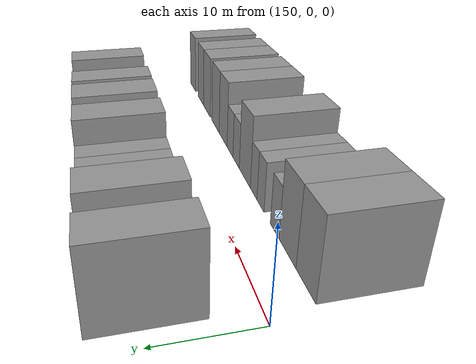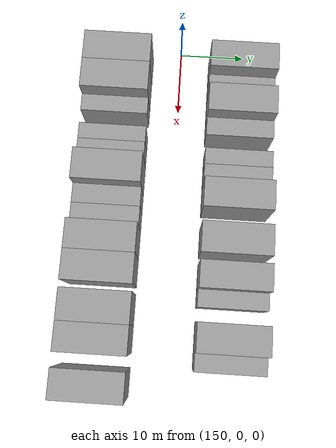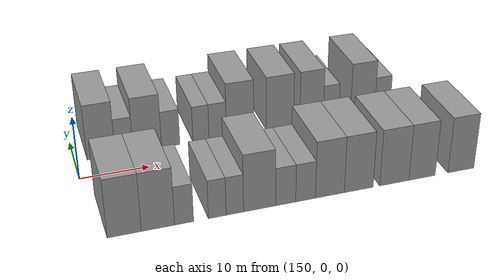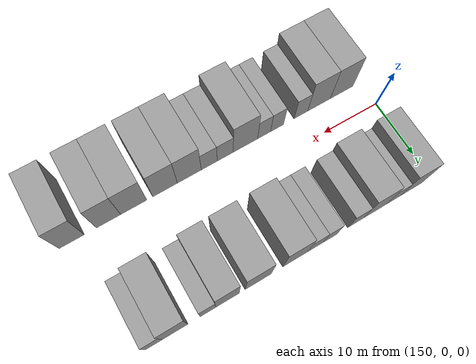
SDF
<sdf version="1.6">
 <world name="default">
  <model name="building_37">
   <static>1</static>
   <pose>153.8271 9.5000 0 0.000000 0.000000 1.570796</pose>
   <link name="link">
    <pose>0 0 4.50 0 0 0</pose>
    <collision name="collision"><geometry><box><size>10.0000 4.0813 9.0000</size></box></geometry></collision>
    <visual name="visual">
     <cast_shadows>0</cast_shadows>
     <geometry><box><size>10.0000 4.0813 9.0000</size></box></geometry>
     <material>
      <script>
       <uri>model://grey_wall/materials/scripts</uri>
       <uri>model://grey_wall/materials/textures</uri>
       <name>vrc/grey_wall</name>
      </script>
     </material>
    </visual>
   </link>
  </model>
  <model name="building_38">
   <static>1</static>
   <pose>157.1939 9.5000 0 0.000000 0.000000 1.570796</pose>
   <link name="link">
    <pose>0 0 3.00 0 0 0</pose>
    <collision name="collision"><geometry><box><size>10.0000 2.6525 6.0000</size></box></geometry></collision>
    <visual name="visual">
     <cast_shadows>0</cast_shadows>
     <geometry><box><size>10.0000 2.6525 6.0000</size></box></geometry>
     <material>
      <script>
       <uri>model://grey_wall/materials/scripts</uri>
       <uri>model://grey_wall/materials/textures</uri>
       <name>vrc/grey_wall</name>
      </script>
     </material>
    </visual>
   </link>
  </model>
  <model name="building_39">
   <static>1</static>
   <pose>160.6369 9.5000 0 0.000000 0.000000 1.570796</pose>
   <link name="link">
    <pose>0 0 4.50 0 0 0</pose>
    <collision name="collision"><geometry><box><size>10.0000 4.2335 9.0000</size></box></geometry></collision>
    <visual name="visual">
     <cast_shadows>0</cast_shadows>
     <geometry><box><size>10.0000 4.2335 9.0000</size></box></geometry>
     <material>
      <script>
       <uri>model://grey_wall/materials/scripts</uri>
       <uri>model://grey_wall/materials/textures</uri>
       <name>vrc/grey_wall</name>
      </script>
     </material>
    </visual>
   </link>
  </model>
  <model name="building_40">
   <static>1</static>
   <pose>164.1347 9.5000 0 0.000000 0.000000 1.570796</pose>
   <link name="link">
    <pose>0 0 3.00 0 0 0</pose>
    <collision name="collision"><geometry><box><size>10.0000 2.7620 6.0000</size></box></geometry></collision>
    <visual name="visual">
     <cast_shadows>0</cast_shadows>
     <geometry><box><size>10.0000 2.7620 6.0000</size></box></geometry>
     <material>
      <script>
       <uri>model://grey_wall/materials/scripts</uri>
       <uri>model://grey_wall/materials/textures</uri>
       <name>vrc/grey_wall</name>
      </script>
     </material>
    </visual>
   </link>
  </model>
  <model name="building_41">
   <static>1</static>
   <pose>168.7528 9.5000 0 0.000000 0.000000 1.570796</pose>
   <link name="link">
    <pose>0 0 3.00 0 0 0</pose>
    <collision name="collision"><geometry><box><size>10.0000 2.4742 6.0000</size></box></geometry></collision>
    <visual name="visual">
     <cast_shadows>0</cast_shadows>
     <geometry><box><size>10.0000 2.4742 6.0000</size></box></geometry>
     <material>
      <script>
       <uri>model://grey_wall/materials/scripts</uri>
       <uri>model://grey_wall/materials/textures</uri>
       <name>vrc/grey_wall</name>
      </script>
     </material>
    </visual>
   </link>
  </model>
  <model name="building_42">
   <static>1</static>
   <pose>171.3411 9.5000 0 0.000000 0.000000 1.570796</pose>
   <link name="link">
    <pose>0 0 3.00 0 0 0</pose>
    <collision name="collision"><geometry><box><size>10.0000 2.7023 6.0000</size></box></geometry></collision>
    <visual name="visual">
     <cast_shadows>0</cast_shadows>
     <geometry><box><size>10.0000 2.7023 6.0000</size></box></geometry>
     <material>
      <script>
       <uri>model://grey_wall/materials/scripts</uri>
       <uri>model://grey_wall/materials/textures</uri>
       <name>vrc/grey_wall</name>
      </script>
     </material>
    </visual>
   </link>
  </model>
  <model name="building_43">
   <static>1</static>
   <pose>174.8384 9.5000 0 0.000000 0.000000 1.570796</pose>
   <link name="link">
    <pose>0 0 4.50 0 0 0</pose>
    <collision name="collision"><geometry><box><size>10.0000 4.2924 9.0000</size></box></geometry></collision>
    <visual name="visual">
     <cast_shadows>0</cast_shadows>
     <geometry><box><size>10.0000 4.2924 9.0000</size></box></geometry>
     <material>
      <script>
       <uri>model://grey_wall/materials/scripts</uri>
       <uri>model://grey_wall/materials/textures</uri>
       <name>vrc/grey_wall</name>
      </script>
     </material>
    </visual>
   </link>
  </model>
  <model name="building_44">
   <static>1</static>
   <pose>181.1859 9.5000 0 0.000000 0.000000 1.570796</pose>
   <link name="link">
    <pose>0 0 4.50 0 0 0</pose>
    <collision name="collision"><geometry><box><size>10.0000 4.4026 9.0000</size></box></geometry></collision>
    <visual name="visual">
     <cast_shadows>0</cast_shadows>
     <geometry><box><size>10.0000 4.4026 9.0000</size></box></geometry>
     <material>
      <script>
       <uri>model://grey_wall/materials/scripts</uri>
       <uri>model://grey_wall/materials/textures</uri>
       <name>vrc/grey_wall</name>
      </script>
     </material>
    </visual>
   </link>
  </model>
  <model name="building_45">
   <static>1</static>
   <pose>186.3127 9.5000 0 0.000000 0.000000 1.570796</pose>
   <link name="link">
    <pose>0 0 4.50 0 0 0</pose>
    <collision name="collision"><geometry><box><size>10.0000 3.8510 9.0000</size></box></geometry></collision>
    <visual name="visual">
     <cast_shadows>0</cast_shadows>
     <geometry><box><size>10.0000 3.8510 9.0000</size></box></geometry>
     <material>
      <script>
       <uri>model://grey_wall/materials/scripts</uri>
       <uri>model://grey_wall/materials/textures</uri>
       <name>vrc/grey_wall</name>
      </script>
     </material>
    </visual>
   </link>
  </model>
  <model name="building_46">
   <static>1</static>
   <pose>189.5015 9.5000 0 0.000000 0.000000 1.570796</pose>
   <link name="link">
    <pose>0 0 3.00 0 0 0</pose>
    <collision name="collision"><geometry><box><size>10.0000 2.5265 6.0000</size></box></geometry></collision>
    <visual name="visual">
     <cast_shadows>0</cast_shadows>
     <geometry><box><size>10.0000 2.5265 6.0000</size></box></geometry>
     <material>
      <script>
       <uri>model://grey_wall/materials/scripts</uri>
       <uri>model://grey_wall/materials/textures</uri>
       <name>vrc/grey_wall</name>
      </script>
     </material>
    </visual>
   </link>
  </model>
  <model name="building_47">
   <static>1</static>
   <pose>194.8007 9.5000 0 0.000000 0.000000 1.570796</pose>
   <link name="link">
    <pose>0 0 4.50 0 0 0</pose>
    <collision name="collision"><geometry><box><size>10.0000 4.0719 9.0000</size></box></geometry></collision>
    <visual name="visual">
     <cast_shadows>0</cast_shadows>
     <geometry><box><size>10.0000 4.0719 9.0000</size></box></geometry>
     <material>
      <script>
       <uri>model://grey_wall/materials/scripts</uri>
       <uri>model://grey_wall/materials/textures</uri>
       <name>vrc/grey_wall</name>
      </script>
     </material>
    </visual>
   </link>
  </model>
  <model name="building_48">
   <static>1</static>
   <pose>198.1495 9.5000 0 0.000000 0.000000 1.570796</pose>
   <link name="link">
    <pose>0 0 3.00 0 0 0</pose>
    <collision name="collision"><geometry><box><size>10.0000 2.6258 6.0000</size></box></geometry></collision>
    <visual name="visual">
     <cast_shadows>0</cast_shadows>
     <geometry><box><size>10.0000 2.6258 6.0000</size></box></geometry>
     <material>
      <script>
       <uri>model://grey_wall/materials/scripts</uri>
       <uri>model://grey_wall/materials/textures</uri>
       <name>vrc/grey_wall</name>
      </script>
     </material>
    </visual>
   </link>
  </model>
  <model name="building_86">
   <static>1</static>
   <pose>153.6163 -9.5000 0 0.000000 0.000000 1.570796</pose>
   <link name="link">
    <pose>0 0 4.50 0 0 0</pose>
    <collision name="collision"><geometry><box><size>10.0000 4.4458 9.0000</size></box></geometry></collision>
    <visual name="visual">
     <cast_shadows>0</cast_shadows>
     <geometry><box><size>10.0000 4.4458 9.0000</size></box></geometry>
     <material>
      <script>
       <uri>model://grey_wall/materials/scripts</uri>
       <uri>model://grey_wall/materials/textures</uri>
       <name>vrc/grey_wall</name>
      </script>
     </material>
    </visual>
   </link>
  </model>
  <model name="building_87">
   <static>1</static>
   <pose>158.0433 -9.5000 0 0.000000 0.000000 1.570796</pose>
   <link name="link">
    <pose>0 0 4.50 0 0 0</pose>
    <collision name="collision"><geometry><box><size>10.0000 4.4081 9.0000</size></box></geometry></collision>
    <visual name="visual">
     <cast_shadows>0</cast_shadows>
     <geometry><box><size>10.0000 4.4081 9.0000</size></box></geometry>
     <material>
      <script>
       <uri>model://grey_wall/materials/scripts</uri>
       <uri>model://grey_wall/materials/textures</uri>
       <name>vrc/grey_wall</name>
      </script>
     </material>
    </visual>
   </link>
  </model>
  <model name="building_88">
   <static>1</static>
   <pose>161.5270 -9.5000 0 0.000000 0.000000 1.570796</pose>
   <link name="link">
    <pose>0 0 3.00 0 0 0</pose>
    <collision name="collision"><geometry><box><size>10.0000 2.5594 6.0000</size></box></geometry></collision>
    <visual name="visual">
     <cast_shadows>0</cast_shadows>
     <geometry><box><size>10.0000 2.5594 6.0000</size></box></geometry>
     <material>
      <script>
       <uri>model://grey_wall/materials/scripts</uri>
       <uri>model://grey_wall/materials/textures</uri>
       <name>vrc/grey_wall</name>
      </script>
     </material>
    </visual>
   </link>
  </model>
  <model name="building_89">
   <static>1</static>
   <pose>166.0201 -9.5000 0 0.000000 0.000000 1.570796</pose>
   <link name="link">
    <pose>0 0 3.00 0 0 0</pose>
    <collision name="collision"><geometry><box><size>10.0000 2.4267 6.0000</size></box></geometry></collision>
    <visual name="visual">
     <cast_shadows>0</cast_shadows>
     <geometry><box><size>10.0000 2.4267 6.0000</size></box></geometry>
     <material>
      <script>
       <uri>model://grey_wall/materials/scripts</uri>
       <uri>model://grey_wall/materials/textures</uri>
       <name>vrc/grey_wall</name>
      </script>
     </material>
    </visual>
   </link>
  </model>
  <model name="building_90">
   <static>1</static>
   <pose>168.4385 -9.5000 0 0.000000 0.000000 1.570796</pose>
   <link name="link">
    <pose>0 0 3.00 0 0 0</pose>
    <collision name="collision"><geometry><box><size>10.0000 2.4102 6.0000</size></box></geometry></collision>
    <visual name="visual">
     <cast_shadows>0</cast_shadows>
     <geometry><box><size>10.0000 2.4102 6.0000</size></box></geometry>
     <material>
      <script>
       <uri>model://grey_wall/materials/scripts</uri>
       <uri>model://grey_wall/materials/textures</uri>
       <name>vrc/grey_wall</name>
      </script>
     </material>
    </visual>
   </link>
  </model>
  <model name="building_91">
   <static>1</static>
   <pose>171.8826 -9.5000 0 0.000000 0.000000 1.570796</pose>
   <link name="link">
    <pose>0 0 4.50 0 0 0</pose>
    <collision name="collision"><geometry><box><size>10.0000 4.4780 9.0000</size></box></geometry></collision>
    <visual name="visual">
     <cast_shadows>0</cast_shadows>
     <geometry><box><size>10.0000 4.4780 9.0000</size></box></geometry>
     <material>
      <script>
       <uri>model://grey_wall/materials/scripts</uri>
       <uri>model://grey_wall/materials/textures</uri>
       <name>vrc/grey_wall</name>
      </script>
     </material>
    </visual>
   </link>
  </model>
  <model name="building_92">
   <static>1</static>
   <pose>175.5637 -9.5000 0 0.000000 0.000000 1.570796</pose>
   <link name="link">
    <pose>0 0 3.00 0 0 0</pose>
    <collision name="collision"><geometry><box><size>10.0000 2.8843 6.0000</size></box></geometry></collision>
    <visual name="visual">
     <cast_shadows>0</cast_shadows>
     <geometry><box><size>10.0000 2.8843 6.0000</size></box></geometry>
     <material>
      <script>
       <uri>model://grey_wall/materials/scripts</uri>
       <uri>model://grey_wall/materials/textures</uri>
       <name>vrc/grey_wall</name>
      </script>
     </material>
    </visual>
   </link>
  </model>
  <model name="building_93">
   <static>1</static>
   <pose>178.4255 -9.5000 0 0.000000 0.000000 1.570796</pose>
   <link name="link">
    <pose>0 0 3.00 0 0 0</pose>
    <collision name="collision"><geometry><box><size>10.0000 2.8391 6.0000</size></box></geometry></collision>
    <visual name="visual">
     <cast_shadows>0</cast_shadows>
     <geometry><box><size>10.0000 2.8391 6.0000</size></box></geometry>
     <material>
      <script>
       <uri>model://grey_wall/materials/scripts</uri>
       <uri>model://grey_wall/materials/textures</uri>
       <name>vrc/grey_wall</name>
      </script>
     </material>
    </visual>
   </link>
  </model>
  <model name="building_94">
   <static>1</static>
   <pose>181.9575 -9.5000 0 0.000000 0.000000 1.570796</pose>
   <link name="link">
    <pose>0 0 4.50 0 0 0</pose>
    <collision name="collision"><geometry><box><size>10.0000 4.2251 9.0000</size></box></geometry></collision>
    <visual name="visual">
     <cast_shadows>0</cast_shadows>
     <geometry><box><size>10.0000 4.2251 9.0000</size></box></geometry>
     <material>
      <script>
       <uri>model://grey_wall/materials/scripts</uri>
       <uri>model://grey_wall/materials/textures</uri>
       <name>vrc/grey_wall</name>
      </script>
     </material>
    </visual>
   </link>
  </model>
  <model name="building_95">
   <static>1</static>
   <pose>186.2089 -9.5000 0 0.000000 0.000000 1.570796</pose>
   <link name="link">
    <pose>0 0 4.50 0 0 0</pose>
    <collision name="collision"><geometry><box><size>10.0000 4.2777 9.0000</size></box></geometry></collision>
    <visual name="visual">
     <cast_shadows>0</cast_shadows>
     <geometry><box><size>10.0000 4.2777 9.0000</size></box></geometry>
     <material>
      <script>
       <uri>model://grey_wall/materials/scripts</uri>
       <uri>model://grey_wall/materials/textures</uri>
       <name>vrc/grey_wall</name>
      </script>
     </material>
    </visual>
   </link>
  </model>
  <model name="building_96">
   <static>1</static>
   <pose>191.5634 -9.5000 0 0.000000 0.000000 1.570796</pose>
   <link name="link">
    <pose>0 0 4.50 0 0 0</pose>
    <collision name="collision"><geometry><box><size>10.0000 4.4312 9.0000</size></box></geometry></collision>
    <visual name="visual">
     <cast_shadows>0</cast_shadows>
     <geometry><box><size>10.0000 4.4312 9.0000</size></box></geometry>
     <material>
      <script>
       <uri>model://grey_wall/materials/scripts</uri>
       <uri>model://grey_wall/materials/textures</uri>
       <name>vrc/grey_wall</name>
      </script>
     </material>
    </visual>
   </link>
  </model>
  <model name="building_97">
   <static>1</static>
   <pose>195.8067 -9.5000 0 0.000000 0.000000 1.570796</pose>
   <link name="link">
    <pose>0 0 4.50 0 0 0</pose>
    <collision name="collision"><geometry><box><size>10.0000 4.0555 9.0000</size></box></geometry></collision>
    <visual name="visual">
     <cast_shadows>0</cast_shadows>
     <geometry><box><size>10.0000 4.0555 9.0000</size></box></geometry>
     <material>
      <script>
       <uri>model://grey_wall/materials/scripts</uri>
       <uri>model://grey_wall/materials/textures</uri>
       <name>vrc/grey_wall</name>
      </script>
     </material>
    </visual>
   </link>
  </model>
  <model name="building_98">
   <static>1</static>
   <pose>201.8796 -9.5000 0 0.000000 0.000000 1.570796</pose>
   <link name="link">
    <pose>0 0 4.50 0 0 0</pose>
    <collision name="collision"><geometry><box><size>10.0000 4.0903 9.0000</size></box></geometry></collision>
    <visual name="visual">
     <cast_shadows>0</cast_shadows>
     <geometry><box><size>10.0000 4.0903 9.0000</size></box></geometry>
     <material>
      <script>
       <uri>model://grey_wall/materials/scripts</uri>
       <uri>model://grey_wall/materials/textures</uri>
       <name>vrc/grey_wall</name>
      </script>
     </material>
    </visual>
   </link>
  </model>
 </world>
</sdf>
